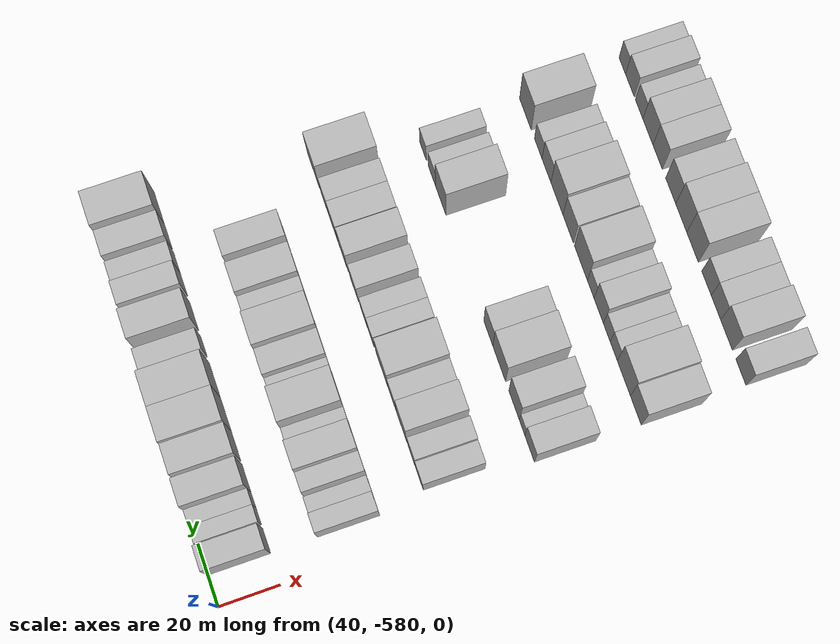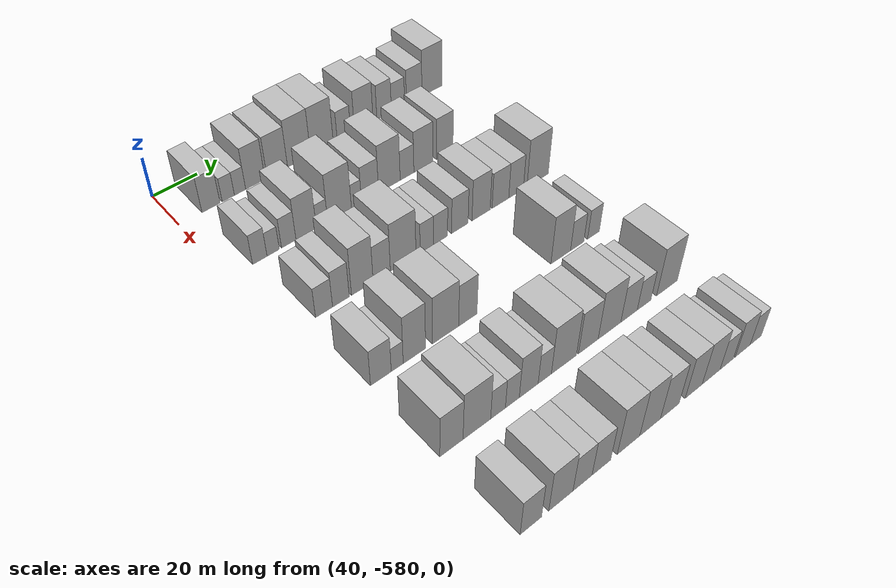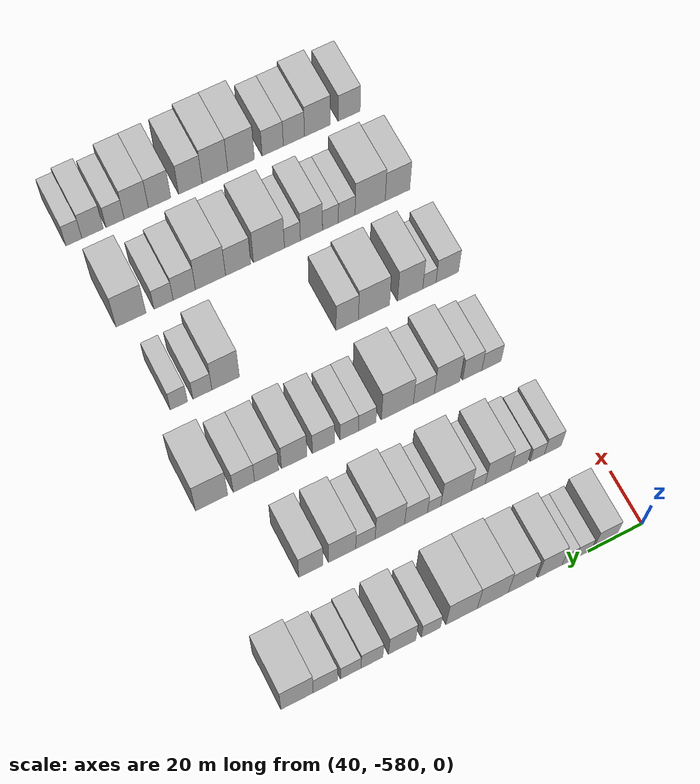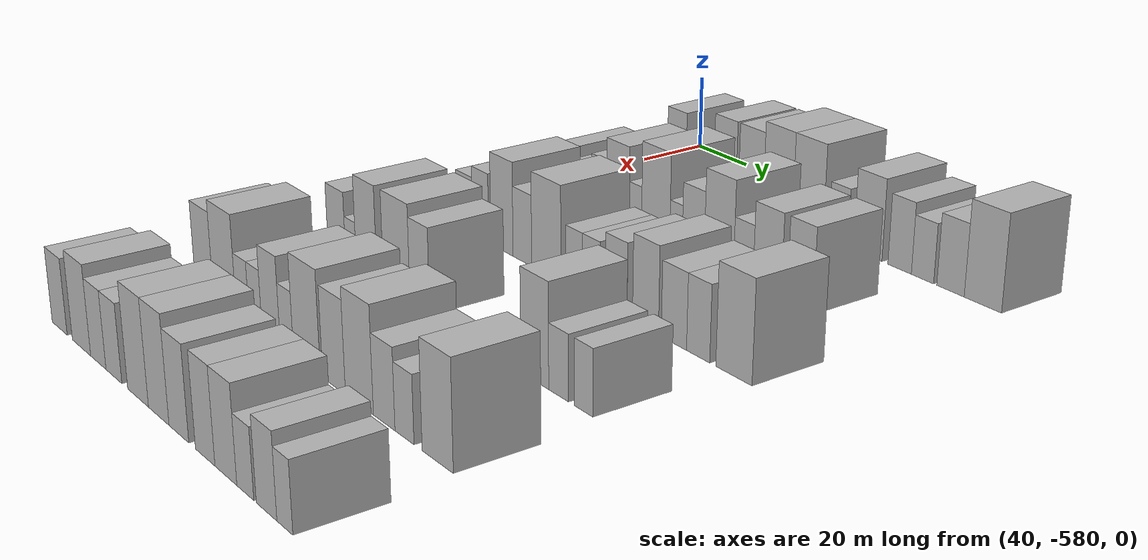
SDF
<sdf version="1.6">
 <world name="default">
  <model name="building_1">
   <static>1</static>
   <pose>50.0000 -565.9757 0 0.000000 0.000000 0.000000</pose>
   <link name="link">
    <pose>0 0 9.00 0 0 0</pose>
    <collision name="collision"><geometry><box><size>20.0000 8.0485 18.0000</size></box></geometry></collision>
    <visual name="visual">
     <cast_shadows>0</cast_shadows>
     <geometry><box><size>20.0000 8.0485 18.0000</size></box></geometry>
     <material>
      <script>
       <uri>model://HANNAS_wall/materials/scripts</uri>
       <uri>model://HANNAS_wall/materials/textures</uri>
       <name>vrc/HANNAS_wall</name>
      </script>
     </material>
    </visual>
   </link>
  </model>
  <model name="building_2">
   <static>1</static>
   <pose>50.0000 -558.2053 0 0.000000 0.000000 0.000000</pose>
   <link name="link">
    <pose>0 0 6.00 0 0 0</pose>
    <collision name="collision"><geometry><box><size>20.0000 5.4924 12.0000</size></box></geometry></collision>
    <visual name="visual">
     <cast_shadows>0</cast_shadows>
     <geometry><box><size>20.0000 5.4924 12.0000</size></box></geometry>
     <material>
      <script>
       <uri>model://HANNAS_wall/materials/scripts</uri>
       <uri>model://HANNAS_wall/materials/textures</uri>
       <name>vrc/HANNAS_wall</name>
      </script>
     </material>
    </visual>
   </link>
  </model>
  <model name="building_3">
   <static>1</static>
   <pose>50.0000 -552.8740 0 0.000000 0.000000 0.000000</pose>
   <link name="link">
    <pose>0 0 6.00 0 0 0</pose>
    <collision name="collision"><geometry><box><size>20.0000 5.1701 12.0000</size></box></geometry></collision>
    <visual name="visual">
     <cast_shadows>0</cast_shadows>
     <geometry><box><size>20.0000 5.1701 12.0000</size></box></geometry>
     <material>
      <script>
       <uri>model://HANNAS_wall/materials/scripts</uri>
       <uri>model://HANNAS_wall/materials/textures</uri>
       <name>vrc/HANNAS_wall</name>
      </script>
     </material>
    </visual>
   </link>
  </model>
  <model name="building_4">
   <static>1</static>
   <pose>50.0000 -545.7942 0 0.000000 0.000000 0.000000</pose>
   <link name="link">
    <pose>0 0 10.50 0 0 0</pose>
    <collision name="collision"><geometry><box><size>20.0000 8.9897 21.0000</size></box></geometry></collision>
    <visual name="visual">
     <cast_shadows>0</cast_shadows>
     <geometry><box><size>20.0000 8.9897 21.0000</size></box></geometry>
     <material>
      <script>
       <uri>model://HANNAS_wall/materials/scripts</uri>
       <uri>model://HANNAS_wall/materials/textures</uri>
       <name>vrc/HANNAS_wall</name>
      </script>
     </material>
    </visual>
   </link>
  </model>
  <model name="building_5">
   <static>1</static>
   <pose>50.0000 -535.4108 0 0.000000 0.000000 0.000000</pose>
   <link name="link">
    <pose>0 0 10.50 0 0 0</pose>
    <collision name="collision"><geometry><box><size>20.0000 9.7772 21.0000</size></box></geometry></collision>
    <visual name="visual">
     <cast_shadows>0</cast_shadows>
     <geometry><box><size>20.0000 9.7772 21.0000</size></box></geometry>
     <material>
      <script>
       <uri>model://HANNAS_wall/materials/scripts</uri>
       <uri>model://HANNAS_wall/materials/textures</uri>
       <name>vrc/HANNAS_wall</name>
      </script>
     </material>
    </visual>
   </link>
  </model>
  <model name="building_6">
   <static>1</static>
   <pose>50.0000 -524.9130 0 0.000000 0.000000 0.000000</pose>
   <link name="link">
    <pose>0 0 12.00 0 0 0</pose>
    <collision name="collision"><geometry><box><size>20.0000 11.2183 24.0000</size></box></geometry></collision>
    <visual name="visual">
     <cast_shadows>0</cast_shadows>
     <geometry><box><size>20.0000 11.2183 24.0000</size></box></geometry>
     <material>
      <script>
       <uri>model://HANNAS_wall/materials/scripts</uri>
       <uri>model://HANNAS_wall/materials/textures</uri>
       <name>vrc/HANNAS_wall</name>
      </script>
     </material>
    </visual>
   </link>
  </model>
  <model name="building_7">
   <static>1</static>
   <pose>50.0000 -513.6335 0 0.000000 0.000000 0.000000</pose>
   <link name="link">
    <pose>0 0 12.00 0 0 0</pose>
    <collision name="collision"><geometry><box><size>20.0000 11.3407 24.0000</size></box></geometry></collision>
    <visual name="visual">
     <cast_shadows>0</cast_shadows>
     <geometry><box><size>20.0000 11.3407 24.0000</size></box></geometry>
     <material>
      <script>
       <uri>model://HANNAS_wall/materials/scripts</uri>
       <uri>model://HANNAS_wall/materials/textures</uri>
       <name>vrc/HANNAS_wall</name>
      </script>
     </material>
    </visual>
   </link>
  </model>
  <model name="building_8">
   <static>1</static>
   <pose>50.0000 -502.5343 0 0.000000 0.000000 0.000000</pose>
   <link name="link">
    <pose>0 0 7.50 0 0 0</pose>
    <collision name="collision"><geometry><box><size>20.0000 6.8578 15.0000</size></box></geometry></collision>
    <visual name="visual">
     <cast_shadows>0</cast_shadows>
     <geometry><box><size>20.0000 6.8578 15.0000</size></box></geometry>
     <material>
      <script>
       <uri>model://HANNAS_wall/materials/scripts</uri>
       <uri>model://HANNAS_wall/materials/textures</uri>
       <name>vrc/HANNAS_wall</name>
      </script>
     </material>
    </visual>
   </link>
  </model>
  <model name="building_9">
   <static>1</static>
   <pose>50.0000 -492.2488 0 0.000000 0.000000 0.000000</pose>
   <link name="link">
    <pose>0 0 10.50 0 0 0</pose>
    <collision name="collision"><geometry><box><size>20.0000 9.7132 21.0000</size></box></geometry></collision>
    <visual name="visual">
     <cast_shadows>0</cast_shadows>
     <geometry><box><size>20.0000 9.7132 21.0000</size></box></geometry>
     <material>
      <script>
       <uri>model://HANNAS_wall/materials/scripts</uri>
       <uri>model://HANNAS_wall/materials/textures</uri>
       <name>vrc/HANNAS_wall</name>
      </script>
     </material>
    </visual>
   </link>
  </model>
  <model name="building_10">
   <static>1</static>
   <pose>50.0000 -481.5132 0 0.000000 0.000000 0.000000</pose>
   <link name="link">
    <pose>0 0 9.00 0 0 0</pose>
    <collision name="collision"><geometry><box><size>20.0000 7.7580 18.0000</size></box></geometry></collision>
    <visual name="visual">
     <cast_shadows>0</cast_shadows>
     <geometry><box><size>20.0000 7.7580 18.0000</size></box></geometry>
     <material>
      <script>
       <uri>model://HANNAS_wall/materials/scripts</uri>
       <uri>model://HANNAS_wall/materials/textures</uri>
       <name>vrc/HANNAS_wall</name>
      </script>
     </material>
    </visual>
   </link>
  </model>
  <model name="building_11">
   <static>1</static>
   <pose>50.0000 -474.0411 0 0.000000 0.000000 0.000000</pose>
   <link name="link">
    <pose>0 0 7.50 0 0 0</pose>
    <collision name="collision"><geometry><box><size>20.0000 7.1861 15.0000</size></box></geometry></collision>
    <visual name="visual">
     <cast_shadows>0</cast_shadows>
     <geometry><box><size>20.0000 7.1861 15.0000</size></box></geometry>
     <material>
      <script>
       <uri>model://HANNAS_wall/materials/scripts</uri>
       <uri>model://HANNAS_wall/materials/textures</uri>
       <name>vrc/HANNAS_wall</name>
      </script>
     </material>
    </visual>
   </link>
  </model>
  <model name="building_12">
   <static>1</static>
   <pose>50.0000 -465.1681 0 0.000000 0.000000 0.000000</pose>
   <link name="link">
    <pose>0 0 9.00 0 0 0</pose>
    <collision name="collision"><geometry><box><size>20.0000 8.5598 18.0000</size></box></geometry></collision>
    <visual name="visual">
     <cast_shadows>0</cast_shadows>
     <geometry><box><size>20.0000 8.5598 18.0000</size></box></geometry>
     <material>
      <script>
       <uri>model://HANNAS_wall/materials/scripts</uri>
       <uri>model://HANNAS_wall/materials/textures</uri>
       <name>vrc/HANNAS_wall</name>
      </script>
     </material>
    </visual>
   </link>
  </model>
  <model name="building_13">
   <static>1</static>
   <pose>50.0000 -455.2533 0 0.000000 0.000000 0.000000</pose>
   <link name="link">
    <pose>0 0 12.00 0 0 0</pose>
    <collision name="collision"><geometry><box><size>20.0000 11.2698 24.0000</size></box></geometry></collision>
    <visual name="visual">
     <cast_shadows>0</cast_shadows>
     <geometry><box><size>20.0000 11.2698 24.0000</size></box></geometry>
     <material>
      <script>
       <uri>model://HANNAS_wall/materials/scripts</uri>
       <uri>model://HANNAS_wall/materials/textures</uri>
       <name>vrc/HANNAS_wall</name>
      </script>
     </material>
    </visual>
   </link>
  </model>
  <model name="building_123">
   <static>1</static>
   <pose>85.0000 -566.8574 0 0.000000 0.000000 0.000000</pose>
   <link name="link">
    <pose>0 0 7.50 0 0 0</pose>
    <collision name="collision"><geometry><box><size>20.0000 6.2853 15.0000</size></box></geometry></collision>
    <visual name="visual">
     <cast_shadows>0</cast_shadows>
     <geometry><box><size>20.0000 6.2853 15.0000</size></box></geometry>
     <material>
      <script>
       <uri>model://HANNAS_wall/materials/scripts</uri>
       <uri>model://HANNAS_wall/materials/textures</uri>
       <name>vrc/HANNAS_wall</name>
      </script>
     </material>
    </visual>
   </link>
  </model>
  <model name="building_124">
   <static>1</static>
   <pose>85.0000 -561.0140 0 0.000000 0.000000 0.000000</pose>
   <link name="link">
    <pose>0 0 6.00 0 0 0</pose>
    <collision name="collision"><geometry><box><size>20.0000 5.4015 12.0000</size></box></geometry></collision>
    <visual name="visual">
     <cast_shadows>0</cast_shadows>
     <geometry><box><size>20.0000 5.4015 12.0000</size></box></geometry>
     <material>
      <script>
       <uri>model://HANNAS_wall/materials/scripts</uri>
       <uri>model://HANNAS_wall/materials/textures</uri>
       <name>vrc/HANNAS_wall</name>
      </script>
     </material>
    </visual>
   </link>
  </model>
  <model name="building_125">
   <static>1</static>
   <pose>85.0000 -554.0870 0 0.000000 0.000000 0.000000</pose>
   <link name="link">
    <pose>0 0 7.50 0 0 0</pose>
    <collision name="collision"><geometry><box><size>20.0000 6.4525 15.0000</size></box></geometry></collision>
    <visual name="visual">
     <cast_shadows>0</cast_shadows>
     <geometry><box><size>20.0000 6.4525 15.0000</size></box></geometry>
     <material>
      <script>
       <uri>model://HANNAS_wall/materials/scripts</uri>
       <uri>model://HANNAS_wall/materials/textures</uri>
       <name>vrc/HANNAS_wall</name>
      </script>
     </material>
    </visual>
   </link>
  </model>
  <model name="building_126">
   <static>1</static>
   <pose>85.0000 -546.2191 0 0.000000 0.000000 0.000000</pose>
   <link name="link">
    <pose>0 0 10.50 0 0 0</pose>
    <collision name="collision"><geometry><box><size>20.0000 9.2833 21.0000</size></box></geometry></collision>
    <visual name="visual">
     <cast_shadows>0</cast_shadows>
     <geometry><box><size>20.0000 9.2833 21.0000</size></box></geometry>
     <material>
      <script>
       <uri>model://HANNAS_wall/materials/scripts</uri>
       <uri>model://HANNAS_wall/materials/textures</uri>
       <name>vrc/HANNAS_wall</name>
      </script>
     </material>
    </visual>
   </link>
  </model>
  <model name="building_127">
   <static>1</static>
   <pose>85.0000 -538.9503 0 0.000000 0.000000 0.000000</pose>
   <link name="link">
    <pose>0 0 6.00 0 0 0</pose>
    <collision name="collision"><geometry><box><size>20.0000 5.2542 12.0000</size></box></geometry></collision>
    <visual name="visual">
     <cast_shadows>0</cast_shadows>
     <geometry><box><size>20.0000 5.2542 12.0000</size></box></geometry>
     <material>
      <script>
       <uri>model://HANNAS_wall/materials/scripts</uri>
       <uri>model://HANNAS_wall/materials/textures</uri>
       <name>vrc/HANNAS_wall</name>
      </script>
     </material>
    </visual>
   </link>
  </model>
  <model name="building_128">
   <static>1</static>
   <pose>85.0000 -530.7011 0 0.000000 0.000000 0.000000</pose>
   <link name="link">
    <pose>0 0 12.00 0 0 0</pose>
    <collision name="collision"><geometry><box><size>20.0000 11.2442 24.0000</size></box></geometry></collision>
    <visual name="visual">
     <cast_shadows>0</cast_shadows>
     <geometry><box><size>20.0000 11.2442 24.0000</size></box></geometry>
     <material>
      <script>
       <uri>model://HANNAS_wall/materials/scripts</uri>
       <uri>model://HANNAS_wall/materials/textures</uri>
       <name>vrc/HANNAS_wall</name>
      </script>
     </material>
    </visual>
   </link>
  </model>
  <model name="building_129">
   <static>1</static>
   <pose>85.0000 -522.6523 0 0.000000 0.000000 0.000000</pose>
   <link name="link">
    <pose>0 0 6.00 0 0 0</pose>
    <collision name="collision"><geometry><box><size>20.0000 4.8533 12.0000</size></box></geometry></collision>
    <visual name="visual">
     <cast_shadows>0</cast_shadows>
     <geometry><box><size>20.0000 4.8533 12.0000</size></box></geometry>
     <material>
      <script>
       <uri>model://HANNAS_wall/materials/scripts</uri>
       <uri>model://HANNAS_wall/materials/textures</uri>
       <name>vrc/HANNAS_wall</name>
      </script>
     </material>
    </visual>
   </link>
  </model>
  <model name="building_130">
   <static>1</static>
   <pose>85.0000 -516.0369 0 0.000000 0.000000 0.000000</pose>
   <link name="link">
    <pose>0 0 9.00 0 0 0</pose>
    <collision name="collision"><geometry><box><size>20.0000 8.3775 18.0000</size></box></geometry></collision>
    <visual name="visual">
     <cast_shadows>0</cast_shadows>
     <geometry><box><size>20.0000 8.3775 18.0000</size></box></geometry>
     <material>
      <script>
       <uri>model://HANNAS_wall/materials/scripts</uri>
       <uri>model://HANNAS_wall/materials/textures</uri>
       <name>vrc/HANNAS_wall</name>
      </script>
     </material>
    </visual>
   </link>
  </model>
  <model name="building_131">
   <static>1</static>
   <pose>85.0000 -506.4662 0 0.000000 0.000000 0.000000</pose>
   <link name="link">
    <pose>0 0 12.00 0 0 0</pose>
    <collision name="collision"><geometry><box><size>20.0000 10.7639 24.0000</size></box></geometry></collision>
    <visual name="visual">
     <cast_shadows>0</cast_shadows>
     <geometry><box><size>20.0000 10.7639 24.0000</size></box></geometry>
     <material>
      <script>
       <uri>model://HANNAS_wall/materials/scripts</uri>
       <uri>model://HANNAS_wall/materials/textures</uri>
       <name>vrc/HANNAS_wall</name>
      </script>
     </material>
    </visual>
   </link>
  </model>
  <model name="building_132">
   <static>1</static>
   <pose>85.0000 -497.5920 0 0.000000 0.000000 0.000000</pose>
   <link name="link">
    <pose>0 0 7.50 0 0 0</pose>
    <collision name="collision"><geometry><box><size>20.0000 6.9845 15.0000</size></box></geometry></collision>
    <visual name="visual">
     <cast_shadows>0</cast_shadows>
     <geometry><box><size>20.0000 6.9845 15.0000</size></box></geometry>
     <material>
      <script>
       <uri>model://HANNAS_wall/materials/scripts</uri>
       <uri>model://HANNAS_wall/materials/textures</uri>
       <name>vrc/HANNAS_wall</name>
      </script>
     </material>
    </visual>
   </link>
  </model>
  <model name="building_133">
   <static>1</static>
   <pose>85.0000 -489.2092 0 0.000000 0.000000 0.000000</pose>
   <link name="link">
    <pose>0 0 10.50 0 0 0</pose>
    <collision name="collision"><geometry><box><size>20.0000 9.7812 21.0000</size></box></geometry></collision>
    <visual name="visual">
     <cast_shadows>0</cast_shadows>
     <geometry><box><size>20.0000 9.7812 21.0000</size></box></geometry>
     <material>
      <script>
       <uri>model://HANNAS_wall/materials/scripts</uri>
       <uri>model://HANNAS_wall/materials/textures</uri>
       <name>vrc/HANNAS_wall</name>
      </script>
     </material>
    </visual>
   </link>
  </model>
  <model name="building_134">
   <static>1</static>
   <pose>85.0000 -477.9757 0 0.000000 0.000000 0.000000</pose>
   <link name="link">
    <pose>0 0 10.50 0 0 0</pose>
    <collision name="collision"><geometry><box><size>20.0000 8.6859 21.0000</size></box></geometry></collision>
    <visual name="visual">
     <cast_shadows>0</cast_shadows>
     <geometry><box><size>20.0000 8.6859 21.0000</size></box></geometry>
     <material>
      <script>
       <uri>model://HANNAS_wall/materials/scripts</uri>
       <uri>model://HANNAS_wall/materials/textures</uri>
       <name>vrc/HANNAS_wall</name>
      </script>
     </material>
    </visual>
   </link>
  </model>
  <model name="building_250">
   <static>1</static>
   <pose>120.0000 -563.3362 0 0.000000 0.000000 0.000000</pose>
   <link name="link">
    <pose>0 0 7.50 0 0 0</pose>
    <collision name="collision"><geometry><box><size>20.0000 7.3276 15.0000</size></box></geometry></collision>
    <visual name="visual">
     <cast_shadows>0</cast_shadows>
     <geometry><box><size>20.0000 7.3276 15.0000</size></box></geometry>
     <material>
      <script>
       <uri>model://HANNAS_wall/materials/scripts</uri>
       <uri>model://HANNAS_wall/materials/textures</uri>
       <name>vrc/HANNAS_wall</name>
      </script>
     </material>
    </visual>
   </link>
  </model>
  <model name="building_251">
   <static>1</static>
   <pose>120.0000 -556.0320 0 0.000000 0.000000 0.000000</pose>
   <link name="link">
    <pose>0 0 9.00 0 0 0</pose>
    <collision name="collision"><geometry><box><size>20.0000 7.2809 18.0000</size></box></geometry></collision>
    <visual name="visual">
     <cast_shadows>0</cast_shadows>
     <geometry><box><size>20.0000 7.2809 18.0000</size></box></geometry>
     <material>
      <script>
       <uri>model://HANNAS_wall/materials/scripts</uri>
       <uri>model://HANNAS_wall/materials/textures</uri>
       <name>vrc/HANNAS_wall</name>
      </script>
     </material>
    </visual>
   </link>
  </model>
  <model name="building_252">
   <static>1</static>
   <pose>120.0000 -546.5535 0 0.000000 0.000000 0.000000</pose>
   <link name="link">
    <pose>0 0 12.00 0 0 0</pose>
    <collision name="collision"><geometry><box><size>20.0000 9.6761 24.0000</size></box></geometry></collision>
    <visual name="visual">
     <cast_shadows>0</cast_shadows>
     <geometry><box><size>20.0000 9.6761 24.0000</size></box></geometry>
     <material>
      <script>
       <uri>model://HANNAS_wall/materials/scripts</uri>
       <uri>model://HANNAS_wall/materials/textures</uri>
       <name>vrc/HANNAS_wall</name>
      </script>
     </material>
    </visual>
   </link>
  </model>
  <model name="building_253">
   <static>1</static>
   <pose>120.0000 -537.7763 0 0.000000 0.000000 0.000000</pose>
   <link name="link">
    <pose>0 0 9.00 0 0 0</pose>
    <collision name="collision"><geometry><box><size>20.0000 7.8782 18.0000</size></box></geometry></collision>
    <visual name="visual">
     <cast_shadows>0</cast_shadows>
     <geometry><box><size>20.0000 7.8782 18.0000</size></box></geometry>
     <material>
      <script>
       <uri>model://HANNAS_wall/materials/scripts</uri>
       <uri>model://HANNAS_wall/materials/textures</uri>
       <name>vrc/HANNAS_wall</name>
      </script>
     </material>
    </visual>
   </link>
  </model>
  <model name="building_254">
   <static>1</static>
   <pose>120.0000 -527.8608 0 0.000000 0.000000 0.000000</pose>
   <link name="link">
    <pose>0 0 12.00 0 0 0</pose>
    <collision name="collision"><geometry><box><size>20.0000 11.9528 24.0000</size></box></geometry></collision>
    <visual name="visual">
     <cast_shadows>0</cast_shadows>
     <geometry><box><size>20.0000 11.9528 24.0000</size></box></geometry>
     <material>
      <script>
       <uri>model://HANNAS_wall/materials/scripts</uri>
       <uri>model://HANNAS_wall/materials/textures</uri>
       <name>vrc/HANNAS_wall</name>
      </script>
     </material>
    </visual>
   </link>
  </model>
  <model name="building_255">
   <static>1</static>
   <pose>120.0000 -516.6382 0 0.000000 0.000000 0.000000</pose>
   <link name="link">
    <pose>0 0 7.50 0 0 0</pose>
    <collision name="collision"><geometry><box><size>20.0000 6.4924 15.0000</size></box></geometry></collision>
    <visual name="visual">
     <cast_shadows>0</cast_shadows>
     <geometry><box><size>20.0000 6.4924 15.0000</size></box></geometry>
     <material>
      <script>
       <uri>model://HANNAS_wall/materials/scripts</uri>
       <uri>model://HANNAS_wall/materials/textures</uri>
       <name>vrc/HANNAS_wall</name>
      </script>
     </material>
    </visual>
   </link>
  </model>
  <model name="building_256">
   <static>1</static>
   <pose>120.0000 -510.0141 0 0.000000 0.000000 0.000000</pose>
   <link name="link">
    <pose>0 0 7.50 0 0 0</pose>
    <collision name="collision"><geometry><box><size>20.0000 6.7559 15.0000</size></box></geometry></collision>
    <visual name="visual">
     <cast_shadows>0</cast_shadows>
     <geometry><box><size>20.0000 6.7559 15.0000</size></box></geometry>
     <material>
      <script>
       <uri>model://HANNAS_wall/materials/scripts</uri>
       <uri>model://HANNAS_wall/materials/textures</uri>
       <name>vrc/HANNAS_wall</name>
      </script>
     </material>
    </visual>
   </link>
  </model>
  <model name="building_257">
   <static>1</static>
   <pose>120.0000 -500.5214 0 0.000000 0.000000 0.000000</pose>
   <link name="link">
    <pose>0 0 9.00 0 0 0</pose>
    <collision name="collision"><geometry><box><size>20.0000 8.2295 18.0000</size></box></geometry></collision>
    <visual name="visual">
     <cast_shadows>0</cast_shadows>
     <geometry><box><size>20.0000 8.2295 18.0000</size></box></geometry>
     <material>
      <script>
       <uri>model://HANNAS_wall/materials/scripts</uri>
       <uri>model://HANNAS_wall/materials/textures</uri>
       <name>vrc/HANNAS_wall</name>
      </script>
     </material>
    </visual>
   </link>
  </model>
  <model name="building_258">
   <static>1</static>
   <pose>120.0000 -489.7580 0 0.000000 0.000000 0.000000</pose>
   <link name="link">
    <pose>0 0 10.50 0 0 0</pose>
    <collision name="collision"><geometry><box><size>20.0000 9.2973 21.0000</size></box></geometry></collision>
    <visual name="visual">
     <cast_shadows>0</cast_shadows>
     <geometry><box><size>20.0000 9.2973 21.0000</size></box></geometry>
     <material>
      <script>
       <uri>model://HANNAS_wall/materials/scripts</uri>
       <uri>model://HANNAS_wall/materials/textures</uri>
       <name>vrc/HANNAS_wall</name>
      </script>
     </material>
    </visual>
   </link>
  </model>
  <model name="building_259">
   <static>1</static>
   <pose>120.0000 -479.7440 0 0.000000 0.000000 0.000000</pose>
   <link name="link">
    <pose>0 0 9.00 0 0 0</pose>
    <collision name="collision"><geometry><box><size>20.0000 8.7308 18.0000</size></box></geometry></collision>
    <visual name="visual">
     <cast_shadows>0</cast_shadows>
     <geometry><box><size>20.0000 8.7308 18.0000</size></box></geometry>
     <material>
      <script>
       <uri>model://HANNAS_wall/materials/scripts</uri>
       <uri>model://HANNAS_wall/materials/textures</uri>
       <name>vrc/HANNAS_wall</name>
      </script>
     </material>
    </visual>
   </link>
  </model>
  <model name="building_260">
   <static>1</static>
   <pose>120.0000 -471.4948 0 0.000000 0.000000 0.000000</pose>
   <link name="link">
    <pose>0 0 9.00 0 0 0</pose>
    <collision name="collision"><geometry><box><size>20.0000 7.7674 18.0000</size></box></geometry></collision>
    <visual name="visual">
     <cast_shadows>0</cast_shadows>
     <geometry><box><size>20.0000 7.7674 18.0000</size></box></geometry>
     <material>
      <script>
       <uri>model://HANNAS_wall/materials/scripts</uri>
       <uri>model://HANNAS_wall/materials/textures</uri>
       <name>vrc/HANNAS_wall</name>
      </script>
     </material>
    </visual>
   </link>
  </model>
  <model name="building_261">
   <static>1</static>
   <pose>120.0000 -459.8185 0 0.000000 0.000000 0.000000</pose>
   <link name="link">
    <pose>0 0 12.00 0 0 0</pose>
    <collision name="collision"><geometry><box><size>20.0000 11.5854 24.0000</size></box></geometry></collision>
    <visual name="visual">
     <cast_shadows>0</cast_shadows>
     <geometry><box><size>20.0000 11.5854 24.0000</size></box></geometry>
     <material>
      <script>
       <uri>model://HANNAS_wall/materials/scripts</uri>
       <uri>model://HANNAS_wall/materials/textures</uri>
       <name>vrc/HANNAS_wall</name>
      </script>
     </material>
    </visual>
   </link>
  </model>
  <model name="building_377">
   <static>1</static>
   <pose>155.0000 -565.6713 0 0.000000 0.000000 0.000000</pose>
   <link name="link">
    <pose>0 0 9.00 0 0 0</pose>
    <collision name="collision"><geometry><box><size>20.0000 8.6575 18.0000</size></box></geometry></collision>
    <visual name="visual">
     <cast_shadows>0</cast_shadows>
     <geometry><box><size>20.0000 8.6575 18.0000</size></box></geometry>
     <material>
      <script>
       <uri>model://HANNAS_wall/materials/scripts</uri>
       <uri>model://HANNAS_wall/materials/textures</uri>
       <name>vrc/HANNAS_wall</name>
      </script>
     </material>
    </visual>
   </link>
  </model>
  <model name="building_378">
   <static>1</static>
   <pose>155.0000 -558.7845 0 0.000000 0.000000 0.000000</pose>
   <link name="link">
    <pose>0 0 6.00 0 0 0</pose>
    <collision name="collision"><geometry><box><size>20.0000 5.1160 12.0000</size></box></geometry></collision>
    <visual name="visual">
     <cast_shadows>0</cast_shadows>
     <geometry><box><size>20.0000 5.1160 12.0000</size></box></geometry>
     <material>
      <script>
       <uri>model://HANNAS_wall/materials/scripts</uri>
       <uri>model://HANNAS_wall/materials/textures</uri>
       <name>vrc/HANNAS_wall</name>
      </script>
     </material>
    </visual>
   </link>
  </model>
  <model name="building_379">
   <static>1</static>
   <pose>155.0000 -551.3805 0 0.000000 0.000000 0.000000</pose>
   <link name="link">
    <pose>0 0 12.00 0 0 0</pose>
    <collision name="collision"><geometry><box><size>20.0000 9.6919 24.0000</size></box></geometry></collision>
    <visual name="visual">
     <cast_shadows>0</cast_shadows>
     <geometry><box><size>20.0000 9.6919 24.0000</size></box></geometry>
     <material>
      <script>
       <uri>model://HANNAS_wall/materials/scripts</uri>
       <uri>model://HANNAS_wall/materials/textures</uri>
       <name>vrc/HANNAS_wall</name>
      </script>
     </material>
    </visual>
   </link>
  </model>
  <model name="building_380">
   <static>1</static>
   <pose>155.0000 -537.6254 0 0.000000 0.000000 0.000000</pose>
   <link name="link">
    <pose>0 0 12.00 0 0 0</pose>
    <collision name="collision"><geometry><box><size>20.0000 11.8182 24.0000</size></box></geometry></collision>
    <visual name="visual">
     <cast_shadows>0</cast_shadows>
     <geometry><box><size>20.0000 11.8182 24.0000</size></box></geometry>
     <material>
      <script>
       <uri>model://HANNAS_wall/materials/scripts</uri>
       <uri>model://HANNAS_wall/materials/textures</uri>
       <name>vrc/HANNAS_wall</name>
      </script>
     </material>
    </visual>
   </link>
  </model>
  <model name="building_381">
   <static>1</static>
   <pose>155.0000 -527.4799 0 0.000000 0.000000 0.000000</pose>
   <link name="link">
    <pose>0 0 10.50 0 0 0</pose>
    <collision name="collision"><geometry><box><size>20.0000 8.4728 21.0000</size></box></geometry></collision>
    <visual name="visual">
     <cast_shadows>0</cast_shadows>
     <geometry><box><size>20.0000 8.4728 21.0000</size></box></geometry>
     <material>
      <script>
       <uri>model://HANNAS_wall/materials/scripts</uri>
       <uri>model://HANNAS_wall/materials/textures</uri>
       <name>vrc/HANNAS_wall</name>
      </script>
     </material>
    </visual>
   </link>
  </model>
  <model name="building_382">
   <static>1</static>
   <pose>155.0000 -482.0619 0 0.000000 0.000000 0.000000</pose>
   <link name="link">
    <pose>0 0 12.00 0 0 0</pose>
    <collision name="collision"><geometry><box><size>20.0000 10.1210 24.0000</size></box></geometry></collision>
    <visual name="visual">
     <cast_shadows>0</cast_shadows>
     <geometry><box><size>20.0000 10.1210 24.0000</size></box></geometry>
     <material>
      <script>
       <uri>model://HANNAS_wall/materials/scripts</uri>
       <uri>model://HANNAS_wall/materials/textures</uri>
       <name>vrc/HANNAS_wall</name>
      </script>
     </material>
    </visual>
   </link>
  </model>
  <model name="building_383">
   <static>1</static>
   <pose>155.0000 -473.5094 0 0.000000 0.000000 0.000000</pose>
   <link name="link">
    <pose>0 0 7.50 0 0 0</pose>
    <collision name="collision"><geometry><box><size>20.0000 6.9841 15.0000</size></box></geometry></collision>
    <visual name="visual">
     <cast_shadows>0</cast_shadows>
     <geometry><box><size>20.0000 6.9841 15.0000</size></box></geometry>
     <material>
      <script>
       <uri>model://HANNAS_wall/materials/scripts</uri>
       <uri>model://HANNAS_wall/materials/textures</uri>
       <name>vrc/HANNAS_wall</name>
      </script>
     </material>
    </visual>
   </link>
  </model>
  <model name="building_384">
   <static>1</static>
   <pose>155.0000 -464.8626 0 0.000000 0.000000 0.000000</pose>
   <link name="link">
    <pose>0 0 7.50 0 0 0</pose>
    <collision name="collision"><geometry><box><size>20.0000 6.3093 15.0000</size></box></geometry></collision>
    <visual name="visual">
     <cast_shadows>0</cast_shadows>
     <geometry><box><size>20.0000 6.3093 15.0000</size></box></geometry>
     <material>
      <script>
       <uri>model://HANNAS_wall/materials/scripts</uri>
       <uri>model://HANNAS_wall/materials/textures</uri>
       <name>vrc/HANNAS_wall</name>
      </script>
     </material>
    </visual>
   </link>
  </model>
  <model name="building_500">
   <static>1</static>
   <pose>190.0000 -565.2092 0 0.000000 0.000000 0.000000</pose>
   <link name="link">
    <pose>0 0 10.50 0 0 0</pose>
    <collision name="collision"><geometry><box><size>20.0000 9.5815 21.0000</size></box></geometry></collision>
    <visual name="visual">
     <cast_shadows>0</cast_shadows>
     <geometry><box><size>20.0000 9.5815 21.0000</size></box></geometry>
     <material>
      <script>
       <uri>model://HANNAS_wall/materials/scripts</uri>
       <uri>model://HANNAS_wall/materials/textures</uri>
       <name>vrc/HANNAS_wall</name>
      </script>
     </material>
    </visual>
   </link>
  </model>
  <model name="building_501">
   <static>1</static>
   <pose>190.0000 -554.5693 0 0.000000 0.000000 0.000000</pose>
   <link name="link">
    <pose>0 0 12.00 0 0 0</pose>
    <collision name="collision"><geometry><box><size>20.0000 11.6984 24.0000</size></box></geometry></collision>
    <visual name="visual">
     <cast_shadows>0</cast_shadows>
     <geometry><box><size>20.0000 11.6984 24.0000</size></box></geometry>
     <material>
      <script>
       <uri>model://HANNAS_wall/materials/scripts</uri>
       <uri>model://HANNAS_wall/materials/textures</uri>
       <name>vrc/HANNAS_wall</name>
      </script>
     </material>
    </visual>
   </link>
  </model>
  <model name="building_502">
   <static>1</static>
   <pose>190.0000 -545.5093 0 0.000000 0.000000 0.000000</pose>
   <link name="link">
    <pose>0 0 7.50 0 0 0</pose>
    <collision name="collision"><geometry><box><size>20.0000 6.4216 15.0000</size></box></geometry></collision>
    <visual name="visual">
     <cast_shadows>0</cast_shadows>
     <geometry><box><size>20.0000 6.4216 15.0000</size></box></geometry>
     <material>
      <script>
       <uri>model://HANNAS_wall/materials/scripts</uri>
       <uri>model://HANNAS_wall/materials/textures</uri>
       <name>vrc/HANNAS_wall</name>
      </script>
     </material>
    </visual>
   </link>
  </model>
  <model name="building_503">
   <static>1</static>
   <pose>190.0000 -539.2337 0 0.000000 0.000000 0.000000</pose>
   <link name="link">
    <pose>0 0 7.50 0 0 0</pose>
    <collision name="collision"><geometry><box><size>20.0000 6.1296 15.0000</size></box></geometry></collision>
    <visual name="visual">
     <cast_shadows>0</cast_shadows>
     <geometry><box><size>20.0000 6.1296 15.0000</size></box></geometry>
     <material>
      <script>
       <uri>model://HANNAS_wall/materials/scripts</uri>
       <uri>model://HANNAS_wall/materials/textures</uri>
       <name>vrc/HANNAS_wall</name>
      </script>
     </material>
    </visual>
   </link>
  </model>
  <model name="building_504">
   <static>1</static>
   <pose>190.0000 -531.9157 0 0.000000 0.000000 0.000000</pose>
   <link name="link">
    <pose>0 0 10.50 0 0 0</pose>
    <collision name="collision"><geometry><box><size>20.0000 8.5063 21.0000</size></box></geometry></collision>
    <visual name="visual">
     <cast_shadows>0</cast_shadows>
     <geometry><box><size>20.0000 8.5063 21.0000</size></box></geometry>
     <material>
      <script>
       <uri>model://HANNAS_wall/materials/scripts</uri>
       <uri>model://HANNAS_wall/materials/textures</uri>
       <name>vrc/HANNAS_wall</name>
      </script>
     </material>
    </visual>
   </link>
  </model>
  <model name="building_505">
   <static>1</static>
   <pose>190.0000 -524.6222 0 0.000000 0.000000 0.000000</pose>
   <link name="link">
    <pose>0 0 7.50 0 0 0</pose>
    <collision name="collision"><geometry><box><size>20.0000 6.0806 15.0000</size></box></geometry></collision>
    <visual name="visual">
     <cast_shadows>0</cast_shadows>
     <geometry><box><size>20.0000 6.0806 15.0000</size></box></geometry>
     <material>
      <script>
       <uri>model://HANNAS_wall/materials/scripts</uri>
       <uri>model://HANNAS_wall/materials/textures</uri>
       <name>vrc/HANNAS_wall</name>
      </script>
     </material>
    </visual>
   </link>
  </model>
  <model name="building_506">
   <static>1</static>
   <pose>190.0000 -515.6717 0 0.000000 0.000000 0.000000</pose>
   <link name="link">
    <pose>0 0 12.00 0 0 0</pose>
    <collision name="collision"><geometry><box><size>20.0000 11.8204 24.0000</size></box></geometry></collision>
    <visual name="visual">
     <cast_shadows>0</cast_shadows>
     <geometry><box><size>20.0000 11.8204 24.0000</size></box></geometry>
     <material>
      <script>
       <uri>model://HANNAS_wall/materials/scripts</uri>
       <uri>model://HANNAS_wall/materials/textures</uri>
       <name>vrc/HANNAS_wall</name>
      </script>
     </material>
    </visual>
   </link>
  </model>
  <model name="building_507">
   <static>1</static>
   <pose>190.0000 -503.9912 0 0.000000 0.000000 0.000000</pose>
   <link name="link">
    <pose>0 0 10.50 0 0 0</pose>
    <collision name="collision"><geometry><box><size>20.0000 9.5407 21.0000</size></box></geometry></collision>
    <visual name="visual">
     <cast_shadows>0</cast_shadows>
     <geometry><box><size>20.0000 9.5407 21.0000</size></box></geometry>
     <material>
      <script>
       <uri>model://HANNAS_wall/materials/scripts</uri>
       <uri>model://HANNAS_wall/materials/textures</uri>
       <name>vrc/HANNAS_wall</name>
      </script>
     </material>
    </visual>
   </link>
  </model>
  <model name="building_508">
   <static>1</static>
   <pose>190.0000 -493.5629 0 0.000000 0.000000 0.000000</pose>
   <link name="link">
    <pose>0 0 12.00 0 0 0</pose>
    <collision name="collision"><geometry><box><size>20.0000 11.3157 24.0000</size></box></geometry></collision>
    <visual name="visual">
     <cast_shadows>0</cast_shadows>
     <geometry><box><size>20.0000 11.3157 24.0000</size></box></geometry>
     <material>
      <script>
       <uri>model://HANNAS_wall/materials/scripts</uri>
       <uri>model://HANNAS_wall/materials/textures</uri>
       <name>vrc/HANNAS_wall</name>
      </script>
     </material>
    </visual>
   </link>
  </model>
  <model name="building_509">
   <static>1</static>
   <pose>190.0000 -483.7118 0 0.000000 0.000000 0.000000</pose>
   <link name="link">
    <pose>0 0 9.00 0 0 0</pose>
    <collision name="collision"><geometry><box><size>20.0000 8.3864 18.0000</size></box></geometry></collision>
    <visual name="visual">
     <cast_shadows>0</cast_shadows>
     <geometry><box><size>20.0000 8.3864 18.0000</size></box></geometry>
     <material>
      <script>
       <uri>model://HANNAS_wall/materials/scripts</uri>
       <uri>model://HANNAS_wall/materials/textures</uri>
       <name>vrc/HANNAS_wall</name>
      </script>
     </material>
    </visual>
   </link>
  </model>
  <model name="building_510">
   <static>1</static>
   <pose>190.0000 -475.9472 0 0.000000 0.000000 0.000000</pose>
   <link name="link">
    <pose>0 0 7.50 0 0 0</pose>
    <collision name="collision"><geometry><box><size>20.0000 7.1429 15.0000</size></box></geometry></collision>
    <visual name="visual">
     <cast_shadows>0</cast_shadows>
     <geometry><box><size>20.0000 7.1429 15.0000</size></box></geometry>
     <material>
      <script>
       <uri>model://HANNAS_wall/materials/scripts</uri>
       <uri>model://HANNAS_wall/materials/textures</uri>
       <name>vrc/HANNAS_wall</name>
      </script>
     </material>
    </visual>
   </link>
  </model>
  <model name="building_511">
   <static>1</static>
   <pose>190.0000 -463.8134 0 0.000000 0.000000 0.000000</pose>
   <link name="link">
    <pose>0 0 12.00 0 0 0</pose>
    <collision name="collision"><geometry><box><size>20.0000 11.1247 24.0000</size></box></geometry></collision>
    <visual name="visual">
     <cast_shadows>0</cast_shadows>
     <geometry><box><size>20.0000 11.1247 24.0000</size></box></geometry>
     <material>
      <script>
       <uri>model://HANNAS_wall/materials/scripts</uri>
       <uri>model://HANNAS_wall/materials/textures</uri>
       <name>vrc/HANNAS_wall</name>
      </script>
     </material>
    </visual>
   </link>
  </model>
  <model name="building_632">
   <static>1</static>
   <pose>225.0000 -564.6494 0 0.000000 0.000000 0.000000</pose>
   <link name="link">
    <pose>0 0 9.00 0 0 0</pose>
    <collision name="collision"><geometry><box><size>20.0000 8.7013 18.0000</size></box></geometry></collision>
    <visual name="visual">
     <cast_shadows>0</cast_shadows>
     <geometry><box><size>20.0000 8.7013 18.0000</size></box></geometry>
     <material>
      <script>
       <uri>model://HANNAS_wall/materials/scripts</uri>
       <uri>model://HANNAS_wall/materials/textures</uri>
       <name>vrc/HANNAS_wall</name>
      </script>
     </material>
    </visual>
   </link>
  </model>
  <model name="building_633">
   <static>1</static>
   <pose>225.0000 -552.1894 0 0.000000 0.000000 0.000000</pose>
   <link name="link">
    <pose>0 0 10.50 0 0 0</pose>
    <collision name="collision"><geometry><box><size>20.0000 10.2187 21.0000</size></box></geometry></collision>
    <visual name="visual">
     <cast_shadows>0</cast_shadows>
     <geometry><box><size>20.0000 10.2187 21.0000</size></box></geometry>
     <material>
      <script>
       <uri>model://HANNAS_wall/materials/scripts</uri>
       <uri>model://HANNAS_wall/materials/textures</uri>
       <name>vrc/HANNAS_wall</name>
      </script>
     </material>
    </visual>
   </link>
  </model>
  <model name="building_634">
   <static>1</static>
   <pose>225.0000 -542.9529 0 0.000000 0.000000 0.000000</pose>
   <link name="link">
    <pose>0 0 9.00 0 0 0</pose>
    <collision name="collision"><geometry><box><size>20.0000 8.2542 18.0000</size></box></geometry></collision>
    <visual name="visual">
     <cast_shadows>0</cast_shadows>
     <geometry><box><size>20.0000 8.2542 18.0000</size></box></geometry>
     <material>
      <script>
       <uri>model://HANNAS_wall/materials/scripts</uri>
       <uri>model://HANNAS_wall/materials/textures</uri>
       <name>vrc/HANNAS_wall</name>
      </script>
     </material>
    </visual>
   </link>
  </model>
  <model name="building_635">
   <static>1</static>
   <pose>225.0000 -534.6898 0 0.000000 0.000000 0.000000</pose>
   <link name="link">
    <pose>0 0 9.00 0 0 0</pose>
    <collision name="collision"><geometry><box><size>20.0000 8.2718 18.0000</size></box></geometry></collision>
    <visual name="visual">
     <cast_shadows>0</cast_shadows>
     <geometry><box><size>20.0000 8.2718 18.0000</size></box></geometry>
     <material>
      <script>
       <uri>model://HANNAS_wall/materials/scripts</uri>
       <uri>model://HANNAS_wall/materials/textures</uri>
       <name>vrc/HANNAS_wall</name>
      </script>
     </material>
    </visual>
   </link>
  </model>
  <model name="building_636">
   <static>1</static>
   <pose>225.0000 -522.3984 0 0.000000 0.000000 0.000000</pose>
   <link name="link">
    <pose>0 0 12.00 0 0 0</pose>
    <collision name="collision"><geometry><box><size>20.0000 10.3110 24.0000</size></box></geometry></collision>
    <visual name="visual">
     <cast_shadows>0</cast_shadows>
     <geometry><box><size>20.0000 10.3110 24.0000</size></box></geometry>
     <material>
      <script>
       <uri>model://HANNAS_wall/materials/scripts</uri>
       <uri>model://HANNAS_wall/materials/textures</uri>
       <name>vrc/HANNAS_wall</name>
      </script>
     </material>
    </visual>
   </link>
  </model>
  <model name="building_637">
   <static>1</static>
   <pose>225.0000 -512.3235 0 0.000000 0.000000 0.000000</pose>
   <link name="link">
    <pose>0 0 12.00 0 0 0</pose>
    <collision name="collision"><geometry><box><size>20.0000 9.8389 24.0000</size></box></geometry></collision>
    <visual name="visual">
     <cast_shadows>0</cast_shadows>
     <geometry><box><size>20.0000 9.8389 24.0000</size></box></geometry>
     <material>
      <script>
       <uri>model://HANNAS_wall/materials/scripts</uri>
       <uri>model://HANNAS_wall/materials/textures</uri>
       <name>vrc/HANNAS_wall</name>
      </script>
     </material>
    </visual>
   </link>
  </model>
  <model name="building_638">
   <static>1</static>
   <pose>225.0000 -502.8773 0 0.000000 0.000000 0.000000</pose>
   <link name="link">
    <pose>0 0 10.50 0 0 0</pose>
    <collision name="collision"><geometry><box><size>20.0000 9.0534 21.0000</size></box></geometry></collision>
    <visual name="visual">
     <cast_shadows>0</cast_shadows>
     <geometry><box><size>20.0000 9.0534 21.0000</size></box></geometry>
     <material>
      <script>
       <uri>model://HANNAS_wall/materials/scripts</uri>
       <uri>model://HANNAS_wall/materials/textures</uri>
       <name>vrc/HANNAS_wall</name>
      </script>
     </material>
    </visual>
   </link>
  </model>
  <model name="building_639">
   <static>1</static>
   <pose>225.0000 -491.0983 0 0.000000 0.000000 0.000000</pose>
   <link name="link">
    <pose>0 0 10.50 0 0 0</pose>
    <collision name="collision"><geometry><box><size>20.0000 8.5047 21.0000</size></box></geometry></collision>
    <visual name="visual">
     <cast_shadows>0</cast_shadows>
     <geometry><box><size>20.0000 8.5047 21.0000</size></box></geometry>
     <material>
      <script>
       <uri>model://HANNAS_wall/materials/scripts</uri>
       <uri>model://HANNAS_wall/materials/textures</uri>
       <name>vrc/HANNAS_wall</name>
      </script>
     </material>
    </visual>
   </link>
  </model>
  <model name="building_640">
   <static>1</static>
   <pose>225.0000 -482.2395 0 0.000000 0.000000 0.000000</pose>
   <link name="link">
    <pose>0 0 10.50 0 0 0</pose>
    <collision name="collision"><geometry><box><size>20.0000 9.2128 21.0000</size></box></geometry></collision>
    <visual name="visual">
     <cast_shadows>0</cast_shadows>
     <geometry><box><size>20.0000 9.2128 21.0000</size></box></geometry>
     <material>
      <script>
       <uri>model://HANNAS_wall/materials/scripts</uri>
       <uri>model://HANNAS_wall/materials/textures</uri>
       <name>vrc/HANNAS_wall</name>
      </script>
     </material>
    </visual>
   </link>
  </model>
  <model name="building_641">
   <static>1</static>
   <pose>225.0000 -474.1908 0 0.000000 0.000000 0.000000</pose>
   <link name="link">
    <pose>0 0 7.50 0 0 0</pose>
    <collision name="collision"><geometry><box><size>20.0000 6.8845 15.0000</size></box></geometry></collision>
    <visual name="visual">
     <cast_shadows>0</cast_shadows>
     <geometry><box><size>20.0000 6.8845 15.0000</size></box></geometry>
     <material>
      <script>
       <uri>model://HANNAS_wall/materials/scripts</uri>
       <uri>model://HANNAS_wall/materials/textures</uri>
       <name>vrc/HANNAS_wall</name>
      </script>
     </material>
    </visual>
   </link>
  </model>
  <model name="building_642">
   <static>1</static>
   <pose>225.0000 -465.7298 0 0.000000 0.000000 0.000000</pose>
   <link name="link">
    <pose>0 0 9.00 0 0 0</pose>
    <collision name="collision"><geometry><box><size>20.0000 8.0375 18.0000</size></box></geometry></collision>
    <visual name="visual">
     <cast_shadows>0</cast_shadows>
     <geometry><box><size>20.0000 8.0375 18.0000</size></box></geometry>
     <material>
      <script>
       <uri>model://HANNAS_wall/materials/scripts</uri>
       <uri>model://HANNAS_wall/materials/textures</uri>
       <name>vrc/HANNAS_wall</name>
      </script>
     </material>
    </visual>
   </link>
  </model>
  <model name="building_643">
   <static>1</static>
   <pose>225.0000 -458.6853 0 0.000000 0.000000 0.000000</pose>
   <link name="link">
    <pose>0 0 7.50 0 0 0</pose>
    <collision name="collision"><geometry><box><size>20.0000 6.0516 15.0000</size></box></geometry></collision>
    <visual name="visual">
     <cast_shadows>0</cast_shadows>
     <geometry><box><size>20.0000 6.0516 15.0000</size></box></geometry>
     <material>
      <script>
       <uri>model://HANNAS_wall/materials/scripts</uri>
       <uri>model://HANNAS_wall/materials/textures</uri>
       <name>vrc/HANNAS_wall</name>
      </script>
     </material>
    </visual>
   </link>
  </model>
 </world>
</sdf>
